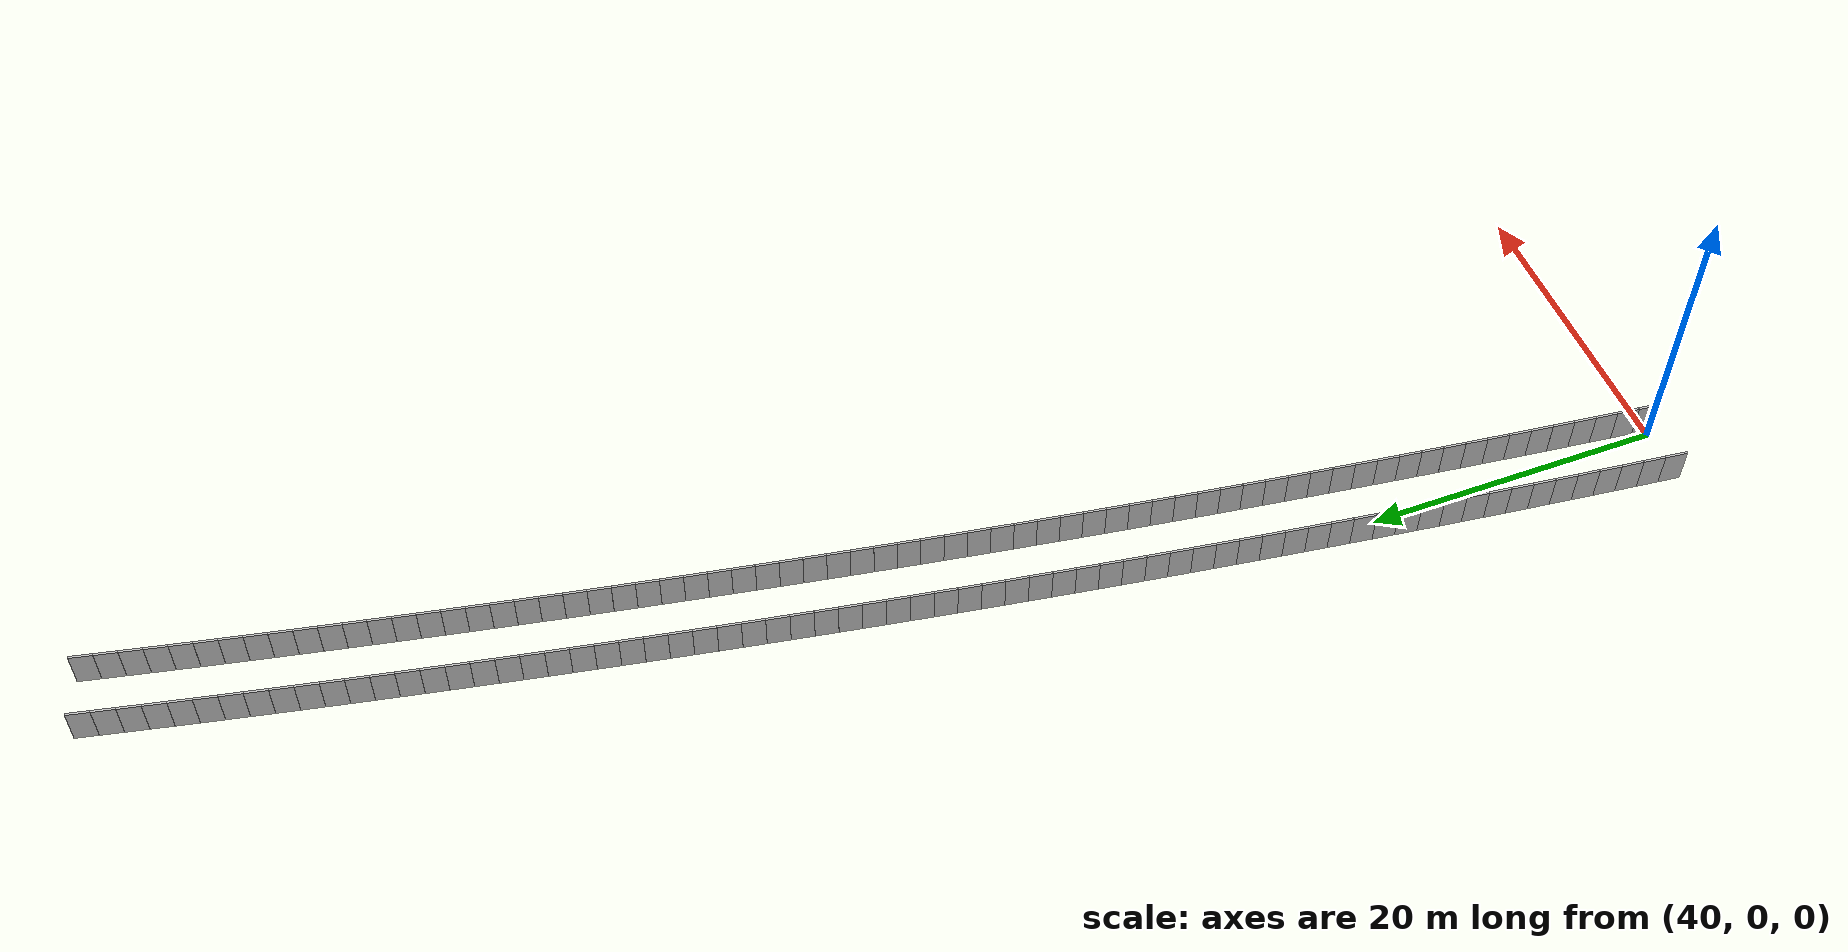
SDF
<sdf version="1.6">
 <model name="sps_0114">
  <static>1</static>
  <allow_auto_disable>0</allow_auto_disable>
  <link name="Wall5109">
   <collision name="collision"><geometry><box><size>1.4965 0.15 2.5</size></box></geometry></collision>
   <visual name="visual">
    <geometry><box><size>1.4965 0.15 2.5</size></box></geometry>
    <transparency>0.0</transparency>
   </visual>
   <pose>57.1898 98.9115 1.25 0 0 -1.79093</pose>
  </link>
  <link name="Wall5110">
   <collision name="collision"><geometry><box><size>1.49658 0.15 2.5</size></box></geometry></collision>
   <visual name="visual">
    <geometry><box><size>1.49658 0.15 2.5</size></box></geometry>
    <transparency>0.0</transparency>
   </visual>
   <pose>56.8642 97.4508 1.25 0 0 -1.78929</pose>
  </link>
  <link name="Wall5111">
   <collision name="collision"><geometry><box><size>1.49648 0.15 2.5</size></box></geometry></collision>
   <visual name="visual">
    <geometry><box><size>1.49648 0.15 2.5</size></box></geometry>
    <transparency>0.0</transparency>
   </visual>
   <pose>56.541 95.9896 1.25 0 0 -1.78768</pose>
  </link>
  <link name="Wall5112">
   <collision name="collision"><geometry><box><size>1.49654 0.15 2.5</size></box></geometry></collision>
   <visual name="visual">
    <geometry><box><size>1.49654 0.15 2.5</size></box></geometry>
    <transparency>0.0</transparency>
   </visual>
   <pose>56.2201 94.5279 1.25 0 0 -1.78613</pose>
  </link>
  <link name="Wall5113">
   <collision name="collision"><geometry><box><size>1.4965 0.15 2.5</size></box></geometry></collision>
   <visual name="visual">
    <geometry><box><size>1.4965 0.15 2.5</size></box></geometry>
    <transparency>0.0</transparency>
   </visual>
   <pose>55.9015 93.0657 1.25 0 0 -1.78467</pose>
  </link>
  <link name="Wall5114">
   <collision name="collision"><geometry><box><size>1.49654 0.15 2.5</size></box></geometry></collision>
   <visual name="visual">
    <geometry><box><size>1.49654 0.15 2.5</size></box></geometry>
    <transparency>0.0</transparency>
   </visual>
   <pose>55.5851 91.603 1.25 0 0 -1.78287</pose>
  </link>
  <link name="Wall5115">
   <collision name="collision"><geometry><box><size>1.49639 0.15 2.5</size></box></geometry></collision>
   <visual name="visual">
    <geometry><box><size>1.49639 0.15 2.5</size></box></geometry>
    <transparency>0.0</transparency>
   </visual>
   <pose>55.2714 90.1398 1.25 0 0 -1.78122</pose>
  </link>
  <link name="Wall5116">
   <collision name="collision"><geometry><box><size>1.49654 0.15 2.5</size></box></geometry></collision>
   <visual name="visual">
    <geometry><box><size>1.49654 0.15 2.5</size></box></geometry>
    <transparency>0.0</transparency>
   </visual>
   <pose>54.9599 88.6761 1.25 0 0 -1.77974</pose>
  </link>
  <link name="Wall5117">
   <collision name="collision"><geometry><box><size>1.49649 0.15 2.5</size></box></geometry></collision>
   <visual name="visual">
    <geometry><box><size>1.49649 0.15 2.5</size></box></geometry>
    <transparency>0.0</transparency>
   </visual>
   <pose>54.6506 87.2119 1.25 0 0 -1.77821</pose>
  </link>
  <link name="Wall5118">
   <collision name="collision"><geometry><box><size>1.49637 0.15 2.5</size></box></geometry></collision>
   <visual name="visual">
    <geometry><box><size>1.49637 0.15 2.5</size></box></geometry>
    <transparency>0.0</transparency>
   </visual>
   <pose>54.3436 85.7473 1.25 0 0 -1.77664</pose>
  </link>
  <link name="Wall5119">
   <collision name="collision"><geometry><box><size>1.49675 0.15 2.5</size></box></geometry></collision>
   <visual name="visual">
    <geometry><box><size>1.49675 0.15 2.5</size></box></geometry>
    <transparency>0.0</transparency>
   </visual>
   <pose>54.0388 84.2821 1.25 0 0 -1.77505</pose>
  </link>
  <link name="Wall5120">
   <collision name="collision"><geometry><box><size>1.49639 0.15 2.5</size></box></geometry></collision>
   <visual name="visual">
    <geometry><box><size>1.49639 0.15 2.5</size></box></geometry>
    <transparency>0.0</transparency>
   </visual>
   <pose>53.7364 82.8164 1.25 0 0 -1.77347</pose>
  </link>
  <link name="Wall5121">
   <collision name="collision"><geometry><box><size>1.49656 0.15 2.5</size></box></geometry></collision>
   <visual name="visual">
    <geometry><box><size>1.49656 0.15 2.5</size></box></geometry>
    <transparency>0.0</transparency>
   </visual>
   <pose>53.4365 81.3503 1.25 0 0 -1.77178</pose>
  </link>
  <link name="Wall5122">
   <collision name="collision"><geometry><box><size>1.49649 0.15 2.5</size></box></geometry></collision>
   <visual name="visual">
    <geometry><box><size>1.49649 0.15 2.5</size></box></geometry>
    <transparency>0.0</transparency>
   </visual>
   <pose>53.1388 79.8837 1.25 0 0 -1.77034</pose>
  </link>
  <link name="Wall5123">
   <collision name="collision"><geometry><box><size>1.49661 0.15 2.5</size></box></geometry></collision>
   <visual name="visual">
    <geometry><box><size>1.49661 0.15 2.5</size></box></geometry>
    <transparency>0.0</transparency>
   </visual>
   <pose>52.8433 78.4166 1.25 0 0 -1.76866</pose>
  </link>
  <link name="Wall5124">
   <collision name="collision"><geometry><box><size>1.4965 0.15 2.5</size></box></geometry></collision>
   <visual name="visual">
    <geometry><box><size>1.4965 0.15 2.5</size></box></geometry>
    <transparency>0.0</transparency>
   </visual>
   <pose>52.5503 76.949 1.25 0 0 -1.76705</pose>
  </link>
  <link name="Wall5125">
   <collision name="collision"><geometry><box><size>1.49649 0.15 2.5</size></box></geometry></collision>
   <visual name="visual">
    <geometry><box><size>1.49649 0.15 2.5</size></box></geometry>
    <transparency>0.0</transparency>
   </visual>
   <pose>52.2596 75.481 1.25 0 0 -1.76555</pose>
  </link>
  <link name="Wall5126">
   <collision name="collision"><geometry><box><size>1.49662 0.15 2.5</size></box></geometry></collision>
   <visual name="visual">
    <geometry><box><size>1.49662 0.15 2.5</size></box></geometry>
    <transparency>0.0</transparency>
   </visual>
   <pose>51.9712 74.0125 1.25 0 0 -1.76387</pose>
  </link>
  <link name="Wall5127">
   <collision name="collision"><geometry><box><size>1.49635 0.15 2.5</size></box></geometry></collision>
   <visual name="visual">
    <geometry><box><size>1.49635 0.15 2.5</size></box></geometry>
    <transparency>0.0</transparency>
   </visual>
   <pose>51.6853 72.5436 1.25 0 0 -1.76229</pose>
  </link>
  <link name="Wall5128">
   <collision name="collision"><geometry><box><size>1.49653 0.15 2.5</size></box></geometry></collision>
   <visual name="visual">
    <geometry><box><size>1.49653 0.15 2.5</size></box></geometry>
    <transparency>0.0</transparency>
   </visual>
   <pose>51.4016 71.0743 1.25 0 0 -1.76077</pose>
  </link>
  <link name="Wall5129">
   <collision name="collision"><geometry><box><size>1.49668 0.15 2.5</size></box></geometry></collision>
   <visual name="visual">
    <geometry><box><size>1.49668 0.15 2.5</size></box></geometry>
    <transparency>0.0</transparency>
   </visual>
   <pose>51.1202 69.6044 1.25 0 0 -1.75913</pose>
  </link>
  <link name="Wall5130">
   <collision name="collision"><geometry><box><size>1.49645 0.15 2.5</size></box></geometry></collision>
   <visual name="visual">
    <geometry><box><size>1.49645 0.15 2.5</size></box></geometry>
    <transparency>0.0</transparency>
   </visual>
   <pose>50.8411 68.1341 1.25 0 0 -1.75767</pose>
  </link>
  <link name="Wall5131">
   <collision name="collision"><geometry><box><size>1.4966 0.15 2.5</size></box></geometry></collision>
   <visual name="visual">
    <geometry><box><size>1.4966 0.15 2.5</size></box></geometry>
    <transparency>0.0</transparency>
   </visual>
   <pose>50.5643 66.6634 1.25 0 0 -1.75599</pose>
  </link>
  <link name="Wall5132">
   <collision name="collision"><geometry><box><size>1.49634 0.15 2.5</size></box></geometry></collision>
   <visual name="visual">
    <geometry><box><size>1.49634 0.15 2.5</size></box></geometry>
    <transparency>0.0</transparency>
   </visual>
   <pose>50.2899 65.1923 1.25 0 0 -1.7544</pose>
  </link>
  <link name="Wall5133">
   <collision name="collision"><geometry><box><size>1.49654 0.15 2.5</size></box></geometry></collision>
   <visual name="visual">
    <geometry><box><size>1.49654 0.15 2.5</size></box></geometry>
    <transparency>0.0</transparency>
   </visual>
   <pose>50.0178 63.7208 1.25 0 0 -1.75288</pose>
  </link>
  <link name="Wall5134">
   <collision name="collision"><geometry><box><size>1.49668 0.15 2.5</size></box></geometry></collision>
   <visual name="visual">
    <geometry><box><size>1.49668 0.15 2.5</size></box></geometry>
    <transparency>0.0</transparency>
   </visual>
   <pose>49.7481 62.2487 1.25 0 0 -1.75112</pose>
  </link>
  <link name="Wall5135">
   <collision name="collision"><geometry><box><size>1.4965 0.15 2.5</size></box></geometry></collision>
   <visual name="visual">
    <geometry><box><size>1.4965 0.15 2.5</size></box></geometry>
    <transparency>0.0</transparency>
   </visual>
   <pose>49.4806 60.7762 1.25 0 0 -1.74978</pose>
  </link>
  <link name="Wall5136">
   <collision name="collision"><geometry><box><size>1.4964 0.15 2.5</size></box></geometry></collision>
   <visual name="visual">
    <geometry><box><size>1.4964 0.15 2.5</size></box></geometry>
    <transparency>0.0</transparency>
   </visual>
   <pose>49.2155 59.3034 1.25 0 0 -1.74801</pose>
  </link>
  <link name="Wall5137">
   <collision name="collision"><geometry><box><size>1.49667 0.15 2.5</size></box></geometry></collision>
   <visual name="visual">
    <geometry><box><size>1.49667 0.15 2.5</size></box></geometry>
    <transparency>0.0</transparency>
   </visual>
   <pose>48.9528 57.8301 1.25 0 0 -1.74648</pose>
  </link>
  <link name="Wall5138">
   <collision name="collision"><geometry><box><size>1.49641 0.15 2.5</size></box></geometry></collision>
   <visual name="visual">
    <geometry><box><size>1.49641 0.15 2.5</size></box></geometry>
    <transparency>0.0</transparency>
   </visual>
   <pose>48.6923 56.3564 1.25 0 0 -1.74502</pose>
  </link>
  <link name="Wall5139">
   <collision name="collision"><geometry><box><size>1.49662 0.15 2.5</size></box></geometry></collision>
   <visual name="visual">
    <geometry><box><size>1.49662 0.15 2.5</size></box></geometry>
    <transparency>0.0</transparency>
   </visual>
   <pose>48.4343 54.8823 1.25 0 0 -1.74322</pose>
  </link>
  <link name="Wall5140">
   <collision name="collision"><geometry><box><size>1.49643 0.15 2.5</size></box></geometry></collision>
   <visual name="visual">
    <geometry><box><size>1.49643 0.15 2.5</size></box></geometry>
    <transparency>0.0</transparency>
   </visual>
   <pose>48.1786 53.4078 1.25 0 0 -1.74179</pose>
  </link>
  <link name="Wall5141">
   <collision name="collision"><geometry><box><size>1.49662 0.15 2.5</size></box></geometry></collision>
   <visual name="visual">
    <geometry><box><size>1.49662 0.15 2.5</size></box></geometry>
    <transparency>0.0</transparency>
   </visual>
   <pose>47.9251 51.9329 1.25 0 0 -1.74012</pose>
  </link>
  <link name="Wall5142">
   <collision name="collision"><geometry><box><size>1.49643 0.15 2.5</size></box></geometry></collision>
   <visual name="visual">
    <geometry><box><size>1.49643 0.15 2.5</size></box></geometry>
    <transparency>0.0</transparency>
   </visual>
   <pose>47.674 50.4576 1.25 0 0 -1.73865</pose>
  </link>
  <link name="Wall5143">
   <collision name="collision"><geometry><box><size>1.49657 0.15 2.5</size></box></geometry></collision>
   <visual name="visual">
    <geometry><box><size>1.49657 0.15 2.5</size></box></geometry>
    <transparency>0.0</transparency>
   </visual>
   <pose>47.4253 48.9819 1.25 0 0 -1.73698</pose>
  </link>
  <link name="Wall5144">
   <collision name="collision"><geometry><box><size>1.49643 0.15 2.5</size></box></geometry></collision>
   <visual name="visual">
    <geometry><box><size>1.49643 0.15 2.5</size></box></geometry>
    <transparency>0.0</transparency>
   </visual>
   <pose>47.1789 47.5058 1.25 0 0 -1.73542</pose>
  </link>
  <link name="Wall5145">
   <collision name="collision"><geometry><box><size>1.49645 0.15 2.5</size></box></geometry></collision>
   <visual name="visual">
    <geometry><box><size>1.49645 0.15 2.5</size></box></geometry>
    <transparency>0.0</transparency>
   </visual>
   <pose>46.9348 46.0294 1.25 0 0 -1.73377</pose>
  </link>
  <link name="Wall5146">
   <collision name="collision"><geometry><box><size>1.49664 0.15 2.5</size></box></geometry></collision>
   <visual name="visual">
    <geometry><box><size>1.49664 0.15 2.5</size></box></geometry>
    <transparency>0.0</transparency>
   </visual>
   <pose>46.6931 44.5525 1.25 0 0 -1.73226</pose>
  </link>
  <link name="Wall5147">
   <collision name="collision"><geometry><box><size>1.49649 0.15 2.5</size></box></geometry></collision>
   <visual name="visual">
    <geometry><box><size>1.49649 0.15 2.5</size></box></geometry>
    <transparency>0.0</transparency>
   </visual>
   <pose>46.4538 43.0752 1.25 0 0 -1.73062</pose>
  </link>
  <link name="Wall5148">
   <collision name="collision"><geometry><box><size>1.49651 0.15 2.5</size></box></geometry></collision>
   <visual name="visual">
    <geometry><box><size>1.49651 0.15 2.5</size></box></geometry>
    <transparency>0.0</transparency>
   </visual>
   <pose>46.2167 41.5976 1.25 0 0 -1.72917</pose>
  </link>
  <link name="Wall5149">
   <collision name="collision"><geometry><box><size>1.49652 0.15 2.5</size></box></geometry></collision>
   <visual name="visual">
    <geometry><box><size>1.49652 0.15 2.5</size></box></geometry>
    <transparency>0.0</transparency>
   </visual>
   <pose>45.982 40.1196 1.25 0 0 -1.7274</pose>
  </link>
  <link name="Wall5150">
   <collision name="collision"><geometry><box><size>1.4966 0.15 2.5</size></box></geometry></collision>
   <visual name="visual">
    <geometry><box><size>1.4966 0.15 2.5</size></box></geometry>
    <transparency>0.0</transparency>
   </visual>
   <pose>45.7497 38.6412 1.25 0 0 -1.7259</pose>
  </link>
  <link name="Wall5151">
   <collision name="collision"><geometry><box><size>1.49639 0.15 2.5</size></box></geometry></collision>
   <visual name="visual">
    <geometry><box><size>1.49639 0.15 2.5</size></box></geometry>
    <transparency>0.0</transparency>
   </visual>
   <pose>45.5196 37.1625 1.25 0 0 -1.72444</pose>
  </link>
  <link name="Wall5152">
   <collision name="collision"><geometry><box><size>1.49665 0.15 2.5</size></box></geometry></collision>
   <visual name="visual">
    <geometry><box><size>1.49665 0.15 2.5</size></box></geometry>
    <transparency>0.0</transparency>
   </visual>
   <pose>45.2919 35.6834 1.25 0 0 -1.72264</pose>
  </link>
  <link name="Wall5153">
   <collision name="collision"><geometry><box><size>1.49651 0.15 2.5</size></box></geometry></collision>
   <visual name="visual">
    <geometry><box><size>1.49651 0.15 2.5</size></box></geometry>
    <transparency>0.0</transparency>
   </visual>
   <pose>45.0666 34.2039 1.25 0 0 -1.72121</pose>
  </link>
  <link name="Wall5154">
   <collision name="collision"><geometry><box><size>1.49651 0.15 2.5</size></box></geometry></collision>
   <visual name="visual">
    <geometry><box><size>1.49651 0.15 2.5</size></box></geometry>
    <transparency>0.0</transparency>
   </visual>
   <pose>44.8435 32.7241 1.25 0 0 -1.71956</pose>
  </link>
  <link name="Wall5155">
   <collision name="collision"><geometry><box><size>1.49657 0.15 2.5</size></box></geometry></collision>
   <visual name="visual">
    <geometry><box><size>1.49657 0.15 2.5</size></box></geometry>
    <transparency>0.0</transparency>
   </visual>
   <pose>44.6229 31.2439 1.25 0 0 -1.7179</pose>
  </link>
  <link name="Wall5156">
   <collision name="collision"><geometry><box><size>1.49644 0.15 2.5</size></box></geometry></collision>
   <visual name="visual">
    <geometry><box><size>1.49644 0.15 2.5</size></box></geometry>
    <transparency>0.0</transparency>
   </visual>
   <pose>44.4047 29.7634 1.25 0 0 -1.71647</pose>
  </link>
  <link name="Wall5157">
   <collision name="collision"><geometry><box><size>1.49649 0.15 2.5</size></box></geometry></collision>
   <visual name="visual">
    <geometry><box><size>1.49649 0.15 2.5</size></box></geometry>
    <transparency>0.0</transparency>
   </visual>
   <pose>44.1887 28.2826 1.25 0 0 -1.71469</pose>
  </link>
  <link name="Wall5158">
   <collision name="collision"><geometry><box><size>1.49656 0.15 2.5</size></box></geometry></collision>
   <visual name="visual">
    <geometry><box><size>1.49656 0.15 2.5</size></box></geometry>
    <transparency>0.0</transparency>
   </visual>
   <pose>43.9752 26.8014 1.25 0 0 -1.71333</pose>
  </link>
  <link name="Wall5159">
   <collision name="collision"><geometry><box><size>1.49662 0.15 2.5</size></box></geometry></collision>
   <visual name="visual">
    <geometry><box><size>1.49662 0.15 2.5</size></box></geometry>
    <transparency>0.0</transparency>
   </visual>
   <pose>43.7638 25.3198 1.25 0 0 -1.71159</pose>
  </link>
  <link name="Wall5160">
   <collision name="collision"><geometry><box><size>1.49649 0.15 2.5</size></box></geometry></collision>
   <visual name="visual">
    <geometry><box><size>1.49649 0.15 2.5</size></box></geometry>
    <transparency>0.0</transparency>
   </visual>
   <pose>43.555 23.8379 1.25 0 0 -1.71008</pose>
  </link>
  <link name="Wall5161">
   <collision name="collision"><geometry><box><size>1.49631 0.15 2.5</size></box></geometry></collision>
   <visual name="visual">
    <geometry><box><size>1.49631 0.15 2.5</size></box></geometry>
    <transparency>0.0</transparency>
   </visual>
   <pose>43.3485 22.3558 1.25 0 0 -1.70837</pose>
  </link>
  <link name="Wall5162">
   <collision name="collision"><geometry><box><size>1.49686 0.15 2.5</size></box></geometry></collision>
   <visual name="visual">
    <geometry><box><size>1.49686 0.15 2.5</size></box></geometry>
    <transparency>0.0</transparency>
   </visual>
   <pose>43.1444 20.8732 1.25 0 0 -1.70683</pose>
  </link>
  <link name="Wall5163">
   <collision name="collision"><geometry><box><size>1.4965 0.15 2.5</size></box></geometry></collision>
   <visual name="visual">
    <geometry><box><size>1.4965 0.15 2.5</size></box></geometry>
    <transparency>0.0</transparency>
   </visual>
   <pose>42.9425 19.3902 1.25 0 0 -1.70539</pose>
  </link>
  <link name="Wall5164">
   <collision name="collision"><geometry><box><size>1.49643 0.15 2.5</size></box></geometry></collision>
   <visual name="visual">
    <geometry><box><size>1.49643 0.15 2.5</size></box></geometry>
    <transparency>0.0</transparency>
   </visual>
   <pose>42.7429 17.9071 1.25 0 0 -1.70379</pose>
  </link>
  <link name="Wall5165">
   <collision name="collision"><geometry><box><size>1.49663 0.15 2.5</size></box></geometry></collision>
   <visual name="visual">
    <geometry><box><size>1.49663 0.15 2.5</size></box></geometry>
    <transparency>0.0</transparency>
   </visual>
   <pose>42.5457 16.4236 1.25 0 0 -1.702</pose>
  </link>
  <link name="Wall5166">
   <collision name="collision"><geometry><box><size>1.49661 0.15 2.5</size></box></geometry></collision>
   <visual name="visual">
    <geometry><box><size>1.49661 0.15 2.5</size></box></geometry>
    <transparency>0.0</transparency>
   </visual>
   <pose>42.3509 14.9397 1.25 0 0 -1.70064</pose>
  </link>
  <link name="Wall5167">
   <collision name="collision"><geometry><box><size>1.49646 0.15 2.5</size></box></geometry></collision>
   <visual name="visual">
    <geometry><box><size>1.49646 0.15 2.5</size></box></geometry>
    <transparency>0.0</transparency>
   </visual>
   <pose>42.1584 13.4556 1.25 0 0 -1.69893</pose>
  </link>
  <link name="Wall5168">
   <collision name="collision"><geometry><box><size>1.49642 0.15 2.5</size></box></geometry></collision>
   <visual name="visual">
    <geometry><box><size>1.49642 0.15 2.5</size></box></geometry>
    <transparency>0.0</transparency>
   </visual>
   <pose>41.9683 11.9713 1.25 0 0 -1.69741</pose>
  </link>
  <link name="Wall5169">
   <collision name="collision"><geometry><box><size>1.49648 0.15 2.5</size></box></geometry></collision>
   <visual name="visual">
    <geometry><box><size>1.49648 0.15 2.5</size></box></geometry>
    <transparency>0.0</transparency>
   </visual>
   <pose>41.7806 10.4867 1.25 0 0 -1.6958</pose>
  </link>
  <link name="Wall5170">
   <collision name="collision"><geometry><box><size>1.49655 0.15 2.5</size></box></geometry></collision>
   <visual name="visual">
    <geometry><box><size>1.49655 0.15 2.5</size></box></geometry>
    <transparency>0.0</transparency>
   </visual>
   <pose>41.5952 9.00169 1.25 0 0 -1.6942</pose>
  </link>
  <link name="Wall5171">
   <collision name="collision"><geometry><box><size>1.4965 0.15 2.5</size></box></geometry></collision>
   <visual name="visual">
    <geometry><box><size>1.4965 0.15 2.5</size></box></geometry>
    <transparency>0.0</transparency>
   </visual>
   <pose>41.4122 7.5164 1.25 0 0 -1.6926</pose>
  </link>
  <link name="Wall5172">
   <collision name="collision"><geometry><box><size>1.49659 0.15 2.5</size></box></geometry></collision>
   <visual name="visual">
    <geometry><box><size>1.49659 0.15 2.5</size></box></geometry>
    <transparency>0.0</transparency>
   </visual>
   <pose>41.2315 6.03081 1.25 0 0 -1.69107</pose>
  </link>
  <link name="Wall5173">
   <collision name="collision"><geometry><box><size>1.49653 0.15 2.5</size></box></geometry></collision>
   <visual name="visual">
    <geometry><box><size>1.49653 0.15 2.5</size></box></geometry>
    <transparency>0.0</transparency>
   </visual>
   <pose>41.0532 4.54491 1.25 0 0 -1.68935</pose>
  </link>
  <link name="Wall5174">
   <collision name="collision"><geometry><box><size>1.49645 0.15 2.5</size></box></geometry></collision>
   <visual name="visual">
    <geometry><box><size>1.49645 0.15 2.5</size></box></geometry>
    <transparency>0.0</transparency>
   </visual>
   <pose>40.8773 3.05879 1.25 0 0 -1.68788</pose>
  </link>
  <link name="Wall5175">
   <collision name="collision"><geometry><box><size>1.49656 0.15 2.5</size></box></geometry></collision>
   <visual name="visual">
    <geometry><box><size>1.49656 0.15 2.5</size></box></geometry>
    <transparency>0.0</transparency>
   </visual>
   <pose>40.7036 1.5724 1.25 0 0 -1.68639</pose>
  </link>
  <link name="Wall5176">
   <collision name="collision"><geometry><box><size>1.49651 0.15 2.5</size></box></geometry></collision>
   <visual name="visual">
    <geometry><box><size>1.49651 0.15 2.5</size></box></geometry>
    <transparency>0.0</transparency>
   </visual>
   <pose>40.5322 0.0857076 1.25 0 0 -1.68467</pose>
  </link>
  <link name="Wall6905">
   <collision name="collision"><geometry><box><size>1.50284 0.15 2.5</size></box></geometry></collision>
   <visual name="visual">
    <geometry><box><size>1.50284 0.15 2.5</size></box></geometry>
    <transparency>0.0</transparency>
   </visual>
   <pose>53.1502 99.8152 1.25 0 0 -1.79082</pose>
  </link>
  <link name="Wall6906">
   <collision name="collision"><geometry><box><size>1.50307 0.15 2.5</size></box></geometry></collision>
   <visual name="visual">
    <geometry><box><size>1.50307 0.15 2.5</size></box></geometry>
    <transparency>0.0</transparency>
   </visual>
   <pose>52.8234 98.3482 1.25 0 0 -1.78925</pose>
  </link>
  <link name="Wall6907">
   <collision name="collision"><geometry><box><size>1.50304 0.15 2.5</size></box></geometry></collision>
   <visual name="visual">
    <geometry><box><size>1.50304 0.15 2.5</size></box></geometry>
    <transparency>0.0</transparency>
   </visual>
   <pose>52.4988 96.8806 1.25 0 0 -1.78767</pose>
  </link>
  <link name="Wall6908">
   <collision name="collision"><geometry><box><size>1.50311 0.15 2.5</size></box></geometry></collision>
   <visual name="visual">
    <geometry><box><size>1.50311 0.15 2.5</size></box></geometry>
    <transparency>0.0</transparency>
   </visual>
   <pose>52.1764 95.4125 1.25 0 0 -1.78617</pose>
  </link>
  <link name="Wall6909">
   <collision name="collision"><geometry><box><size>1.50319 0.15 2.5</size></box></geometry></collision>
   <visual name="visual">
    <geometry><box><size>1.50319 0.15 2.5</size></box></geometry>
    <transparency>0.0</transparency>
   </visual>
   <pose>51.8564 93.9438 1.25 0 0 -1.78449</pose>
  </link>
  <link name="Wall6910">
   <collision name="collision"><geometry><box><size>1.5031 0.15 2.5</size></box></geometry></collision>
   <visual name="visual">
    <geometry><box><size>1.5031 0.15 2.5</size></box></geometry>
    <transparency>0.0</transparency>
   </visual>
   <pose>51.5388 92.4746 1.25 0 0 -1.78289</pose>
  </link>
  <link name="Wall6911">
   <collision name="collision"><geometry><box><size>1.503 0.15 2.5</size></box></geometry></collision>
   <visual name="visual">
    <geometry><box><size>1.503 0.15 2.5</size></box></geometry>
    <transparency>0.0</transparency>
   </visual>
   <pose>51.2235 91.005 1.25 0 0 -1.7814</pose>
  </link>
  <link name="Wall6912">
   <collision name="collision"><geometry><box><size>1.50309 0.15 2.5</size></box></geometry></collision>
   <visual name="visual">
    <geometry><box><size>1.50309 0.15 2.5</size></box></geometry>
    <transparency>0.0</transparency>
   </visual>
   <pose>50.9105 89.5349 1.25 0 0 -1.77973</pose>
  </link>
  <link name="Wall6913">
   <collision name="collision"><geometry><box><size>1.50306 0.15 2.5</size></box></geometry></collision>
   <visual name="visual">
    <geometry><box><size>1.50306 0.15 2.5</size></box></geometry>
    <transparency>0.0</transparency>
   </visual>
   <pose>50.5998 88.0643 1.25 0 0 -1.77828</pose>
  </link>
  <link name="Wall6914">
   <collision name="collision"><geometry><box><size>1.5031 0.15 2.5</size></box></geometry></collision>
   <visual name="visual">
    <geometry><box><size>1.5031 0.15 2.5</size></box></geometry>
    <transparency>0.0</transparency>
   </visual>
   <pose>50.2914 86.5932 1.25 0 0 -1.77662</pose>
  </link>
  <link name="Wall6915">
   <collision name="collision"><geometry><box><size>1.50303 0.15 2.5</size></box></geometry></collision>
   <visual name="visual">
    <geometry><box><size>1.50303 0.15 2.5</size></box></geometry>
    <transparency>0.0</transparency>
   </visual>
   <pose>49.9854 85.1216 1.25 0 0 -1.77501</pose>
  </link>
  <link name="Wall6916">
   <collision name="collision"><geometry><box><size>1.50314 0.15 2.5</size></box></geometry></collision>
   <visual name="visual">
    <geometry><box><size>1.50314 0.15 2.5</size></box></geometry>
    <transparency>0.0</transparency>
   </visual>
   <pose>49.6818 83.6495 1.25 0 0 -1.77334</pose>
  </link>
  <link name="Wall6917">
   <collision name="collision"><geometry><box><size>1.50307 0.15 2.5</size></box></geometry></collision>
   <visual name="visual">
    <geometry><box><size>1.50307 0.15 2.5</size></box></geometry>
    <transparency>0.0</transparency>
   </visual>
   <pose>49.3805 82.1769 1.25 0 0 -1.7719</pose>
  </link>
  <link name="Wall6918">
   <collision name="collision"><geometry><box><size>1.50318 0.15 2.5</size></box></geometry></collision>
   <visual name="visual">
    <geometry><box><size>1.50318 0.15 2.5</size></box></geometry>
    <transparency>0.0</transparency>
   </visual>
   <pose>49.0815 80.7038 1.25 0 0 -1.77022</pose>
  </link>
  <link name="Wall6919">
   <collision name="collision"><geometry><box><size>1.50295 0.15 2.5</size></box></geometry></collision>
   <visual name="visual">
    <geometry><box><size>1.50295 0.15 2.5</size></box></geometry>
    <transparency>0.0</transparency>
   </visual>
   <pose>48.7849 79.2303 1.25 0 0 -1.76864</pose>
  </link>
  <link name="Wall6920">
   <collision name="collision"><geometry><box><size>1.50305 0.15 2.5</size></box></geometry></collision>
   <visual name="visual">
    <geometry><box><size>1.50305 0.15 2.5</size></box></geometry>
    <transparency>0.0</transparency>
   </visual>
   <pose>48.4907 77.7564 1.25 0 0 -1.76709</pose>
  </link>
  <link name="Wall6921">
   <collision name="collision"><geometry><box><size>1.50302 0.15 2.5</size></box></geometry></collision>
   <visual name="visual">
    <geometry><box><size>1.50302 0.15 2.5</size></box></geometry>
    <transparency>0.0</transparency>
   </visual>
   <pose>48.1987 76.282 1.25 0 0 -1.76552</pose>
  </link>
  <link name="Wall6922">
   <collision name="collision"><geometry><box><size>1.50318 0.15 2.5</size></box></geometry></collision>
   <visual name="visual">
    <geometry><box><size>1.50318 0.15 2.5</size></box></geometry>
    <transparency>0.0</transparency>
   </visual>
   <pose>47.909 74.8071 1.25 0 0 -1.76397</pose>
  </link>
  <link name="Wall6923">
   <collision name="collision"><geometry><box><size>1.50308 0.15 2.5</size></box></geometry></collision>
   <visual name="visual">
    <geometry><box><size>1.50308 0.15 2.5</size></box></geometry>
    <transparency>0.0</transparency>
   </visual>
   <pose>47.6216 73.3317 1.25 0 0 -1.76237</pose>
  </link>
  <link name="Wall6924">
   <collision name="collision"><geometry><box><size>1.50305 0.15 2.5</size></box></geometry></collision>
   <visual name="visual">
    <geometry><box><size>1.50305 0.15 2.5</size></box></geometry>
    <transparency>0.0</transparency>
   </visual>
   <pose>47.3366 71.8559 1.25 0 0 -1.76076</pose>
  </link>
  <link name="Wall6925">
   <collision name="collision"><geometry><box><size>1.50314 0.15 2.5</size></box></geometry></collision>
   <visual name="visual">
    <geometry><box><size>1.50314 0.15 2.5</size></box></geometry>
    <transparency>0.0</transparency>
   </visual>
   <pose>47.0539 70.3796 1.25 0 0 -1.75914</pose>
  </link>
  <link name="Wall6926">
   <collision name="collision"><geometry><box><size>1.50296 0.15 2.5</size></box></geometry></collision>
   <visual name="visual">
    <geometry><box><size>1.50296 0.15 2.5</size></box></geometry>
    <transparency>0.0</transparency>
   </visual>
   <pose>46.7736 68.9029 1.25 0 0 -1.75763</pose>
  </link>
  <link name="Wall6927">
   <collision name="collision"><geometry><box><size>1.50312 0.15 2.5</size></box></geometry></collision>
   <visual name="visual">
    <geometry><box><size>1.50312 0.15 2.5</size></box></geometry>
    <transparency>0.0</transparency>
   </visual>
   <pose>46.4957 67.4258 1.25 0 0 -1.756</pose>
  </link>
  <link name="Wall6928">
   <collision name="collision"><geometry><box><size>1.50305 0.15 2.5</size></box></geometry></collision>
   <visual name="visual">
    <geometry><box><size>1.50305 0.15 2.5</size></box></geometry>
    <transparency>0.0</transparency>
   </visual>
   <pose>46.2201 65.9482 1.25 0 0 -1.7544</pose>
  </link>
  <link name="Wall6929">
   <collision name="collision"><geometry><box><size>1.50307 0.15 2.5</size></box></geometry></collision>
   <visual name="visual">
    <geometry><box><size>1.50307 0.15 2.5</size></box></geometry>
    <transparency>0.0</transparency>
   </visual>
   <pose>45.9467 64.4702 1.25 0 0 -1.75291</pose>
  </link>
  <link name="Wall6930">
   <collision name="collision"><geometry><box><size>1.50319 0.15 2.5</size></box></geometry></collision>
   <visual name="visual">
    <geometry><box><size>1.50319 0.15 2.5</size></box></geometry>
    <transparency>0.0</transparency>
   </visual>
   <pose>45.6758 62.9917 1.25 0 0 -1.75112</pose>
  </link>
  <link name="Wall6931">
   <collision name="collision"><geometry><box><size>1.50301 0.15 2.5</size></box></geometry></collision>
   <visual name="visual">
    <geometry><box><size>1.50301 0.15 2.5</size></box></geometry>
    <transparency>0.0</transparency>
   </visual>
   <pose>45.4072 61.5128 1.25 0 0 -1.74978</pose>
  </link>
  <link name="Wall6932">
   <collision name="collision"><geometry><box><size>1.5031 0.15 2.5</size></box></geometry></collision>
   <visual name="visual">
    <geometry><box><size>1.5031 0.15 2.5</size></box></geometry>
    <transparency>0.0</transparency>
   </visual>
   <pose>45.141 60.0335 1.25 0 0 -1.74803</pose>
  </link>
  <link name="Wall6933">
   <collision name="collision"><geometry><box><size>1.5032 0.15 2.5</size></box></geometry></collision>
   <visual name="visual">
    <geometry><box><size>1.5032 0.15 2.5</size></box></geometry>
    <transparency>0.0</transparency>
   </visual>
   <pose>44.877 58.5537 1.25 0 0 -1.74654</pose>
  </link>
  <link name="Wall6934">
   <collision name="collision"><geometry><box><size>1.5031 0.15 2.5</size></box></geometry></collision>
   <visual name="visual">
    <geometry><box><size>1.5031 0.15 2.5</size></box></geometry>
    <transparency>0.0</transparency>
   </visual>
   <pose>44.6155 57.0735 1.25 0 0 -1.74478</pose>
  </link>
  <link name="Wall6935">
   <collision name="collision"><geometry><box><size>1.50308 0.15 2.5</size></box></geometry></collision>
   <visual name="visual">
    <geometry><box><size>1.50308 0.15 2.5</size></box></geometry>
    <transparency>0.0</transparency>
   </visual>
   <pose>44.3564 55.5929 1.25 0 0 -1.7433</pose>
  </link>
  <link name="Wall6936">
   <collision name="collision"><geometry><box><size>1.50313 0.15 2.5</size></box></geometry></collision>
   <visual name="visual">
    <geometry><box><size>1.50313 0.15 2.5</size></box></geometry>
    <transparency>0.0</transparency>
   </visual>
   <pose>44.0995 54.1119 1.25 0 0 -1.74181</pose>
  </link>
  <link name="Wall6937">
   <collision name="collision"><geometry><box><size>1.50313 0.15 2.5</size></box></geometry></collision>
   <visual name="visual">
    <geometry><box><size>1.50313 0.15 2.5</size></box></geometry>
    <transparency>0.0</transparency>
   </visual>
   <pose>43.845 52.6305 1.25 0 0 -1.74016</pose>
  </link>
  <link name="Wall6938">
   <collision name="collision"><geometry><box><size>1.50287 0.15 2.5</size></box></geometry></collision>
   <visual name="visual">
    <geometry><box><size>1.50287 0.15 2.5</size></box></geometry>
    <transparency>0.0</transparency>
   </visual>
   <pose>43.5928 51.1488 1.25 0 0 -1.73862</pose>
  </link>
  <link name="Wall6939">
   <collision name="collision"><geometry><box><size>1.50315 0.15 2.5</size></box></geometry></collision>
   <visual name="visual">
    <geometry><box><size>1.50315 0.15 2.5</size></box></geometry>
    <transparency>0.0</transparency>
   </visual>
   <pose>43.3429 49.6667 1.25 0 0 -1.73707</pose>
  </link>
  <link name="Wall6940">
   <collision name="collision"><geometry><box><size>1.50291 0.15 2.5</size></box></geometry></collision>
   <visual name="visual">
    <geometry><box><size>1.50291 0.15 2.5</size></box></geometry>
    <transparency>0.0</transparency>
   </visual>
   <pose>43.0954 48.1842 1.25 0 0 -1.73536</pose>
  </link>
  <link name="Wall6941">
   <collision name="collision"><geometry><box><size>1.50315 0.15 2.5</size></box></geometry></collision>
   <visual name="visual">
    <geometry><box><size>1.50315 0.15 2.5</size></box></geometry>
    <transparency>0.0</transparency>
   </visual>
   <pose>42.8502 46.7013 1.25 0 0 -1.73386</pose>
  </link>
  <link name="Wall6942">
   <collision name="collision"><geometry><box><size>1.50312 0.15 2.5</size></box></geometry></collision>
   <visual name="visual">
    <geometry><box><size>1.50312 0.15 2.5</size></box></geometry>
    <transparency>0.0</transparency>
   </visual>
   <pose>42.6074 45.2179 1.25 0 0 -1.73221</pose>
  </link>
  <link name="Wall6943">
   <collision name="collision"><geometry><box><size>1.50316 0.15 2.5</size></box></geometry></collision>
   <visual name="visual">
    <geometry><box><size>1.50316 0.15 2.5</size></box></geometry>
    <transparency>0.0</transparency>
   </visual>
   <pose>42.3671 43.7341 1.25 0 0 -1.7306</pose>
  </link>
  <link name="Wall6944">
   <collision name="collision"><geometry><box><size>1.50297 0.15 2.5</size></box></geometry></collision>
   <visual name="visual">
    <geometry><box><size>1.50297 0.15 2.5</size></box></geometry>
    <transparency>0.0</transparency>
   </visual>
   <pose>42.1291 42.25 1.25 0 0 -1.72902</pose>
  </link>
  <link name="Wall6945">
   <collision name="collision"><geometry><box><size>1.50321 0.15 2.5</size></box></geometry></collision>
   <visual name="visual">
    <geometry><box><size>1.50321 0.15 2.5</size></box></geometry>
    <transparency>0.0</transparency>
   </visual>
   <pose>41.8934 40.7655 1.25 0 0 -1.72747</pose>
  </link>
  <link name="Wall6946">
   <collision name="collision"><geometry><box><size>1.50304 0.15 2.5</size></box></geometry></collision>
   <visual name="visual">
    <geometry><box><size>1.50304 0.15 2.5</size></box></geometry>
    <transparency>0.0</transparency>
   </visual>
   <pose>41.66 39.2806 1.25 0 0 -1.72593</pose>
  </link>
  <link name="Wall6947">
   <collision name="collision"><geometry><box><size>1.50308 0.15 2.5</size></box></geometry></collision>
   <visual name="visual">
    <geometry><box><size>1.50308 0.15 2.5</size></box></geometry>
    <transparency>0.0</transparency>
   </visual>
   <pose>41.4289 37.7954 1.25 0 0 -1.72428</pose>
  </link>
  <link name="Wall6948">
   <collision name="collision"><geometry><box><size>1.50293 0.15 2.5</size></box></geometry></collision>
   <visual name="visual">
    <geometry><box><size>1.50293 0.15 2.5</size></box></geometry>
    <transparency>0.0</transparency>
   </visual>
   <pose>41.2002 36.3099 1.25 0 0 -1.72282</pose>
  </link>
  <link name="Wall6949">
   <collision name="collision"><geometry><box><size>1.50314 0.15 2.5</size></box></geometry></collision>
   <visual name="visual">
    <geometry><box><size>1.50314 0.15 2.5</size></box></geometry>
    <transparency>0.0</transparency>
   </visual>
   <pose>40.974 34.824 1.25 0 0 -1.72103</pose>
  </link>
  <link name="Wall6950">
   <collision name="collision"><geometry><box><size>1.503 0.15 2.5</size></box></geometry></collision>
   <visual name="visual">
    <geometry><box><size>1.503 0.15 2.5</size></box></geometry>
    <transparency>0.0</transparency>
   </visual>
   <pose>40.7501 33.3377 1.25 0 0 -1.71961</pose>
  </link>
  <link name="Wall6951">
   <collision name="collision"><geometry><box><size>1.50306 0.15 2.5</size></box></geometry></collision>
   <visual name="visual">
    <geometry><box><size>1.50306 0.15 2.5</size></box></geometry>
    <transparency>0.0</transparency>
   </visual>
   <pose>40.5284 31.8511 1.25 0 0 -1.71796</pose>
  </link>
  <link name="Wall6952">
   <collision name="collision"><geometry><box><size>1.50307 0.15 2.5</size></box></geometry></collision>
   <visual name="visual">
    <geometry><box><size>1.50307 0.15 2.5</size></box></geometry>
    <transparency>0.0</transparency>
   </visual>
   <pose>40.3093 30.3641 1.25 0 0 -1.71632</pose>
  </link>
  <link name="Wall6953">
   <collision name="collision"><geometry><box><size>1.50318 0.15 2.5</size></box></geometry></collision>
   <visual name="visual">
    <geometry><box><size>1.50318 0.15 2.5</size></box></geometry>
    <transparency>0.0</transparency>
   </visual>
   <pose>40.0924 28.8767 1.25 0 0 -1.71487</pose>
  </link>
  <link name="Wall6954">
   <collision name="collision"><geometry><box><size>1.50302 0.15 2.5</size></box></geometry></collision>
   <visual name="visual">
    <geometry><box><size>1.50302 0.15 2.5</size></box></geometry>
    <transparency>0.0</transparency>
   </visual>
   <pose>39.8778 27.389 1.25 0 0 -1.71324</pose>
  </link>
  <link name="Wall6955">
   <collision name="collision"><geometry><box><size>1.5031 0.15 2.5</size></box></geometry></collision>
   <visual name="visual">
    <geometry><box><size>1.5031 0.15 2.5</size></box></geometry>
    <transparency>0.0</transparency>
   </visual>
   <pose>39.6656 25.901 1.25 0 0 -1.71164</pose>
  </link>
  <link name="Wall6956">
   <collision name="collision"><geometry><box><size>1.50313 0.15 2.5</size></box></geometry></collision>
   <visual name="visual">
    <geometry><box><size>1.50313 0.15 2.5</size></box></geometry>
    <transparency>0.0</transparency>
   </visual>
   <pose>39.4558 24.4126 1.25 0 0 -1.71003</pose>
  </link>
  <link name="Wall6957">
   <collision name="collision"><geometry><box><size>1.50322 0.15 2.5</size></box></geometry></collision>
   <visual name="visual">
    <geometry><box><size>1.50322 0.15 2.5</size></box></geometry>
    <transparency>0.0</transparency>
   </visual>
   <pose>39.2484 22.9238 1.25 0 0 -1.70839</pose>
  </link>
  <link name="Wall6958">
   <collision name="collision"><geometry><box><size>1.50311 0.15 2.5</size></box></geometry></collision>
   <visual name="visual">
    <geometry><box><size>1.50311 0.15 2.5</size></box></geometry>
    <transparency>0.0</transparency>
   </visual>
   <pose>39.0433 21.4347 1.25 0 0 -1.70696</pose>
  </link>
  <link name="Wall6959">
   <collision name="collision"><geometry><box><size>1.50312 0.15 2.5</size></box></geometry></collision>
   <visual name="visual">
    <geometry><box><size>1.50312 0.15 2.5</size></box></geometry>
    <transparency>0.0</transparency>
   </visual>
   <pose>38.8405 19.9453 1.25 0 0 -1.7052</pose>
  </link>
  <link name="Wall6960">
   <collision name="collision"><geometry><box><size>1.50291 0.15 2.5</size></box></geometry></collision>
   <visual name="visual">
    <geometry><box><size>1.50291 0.15 2.5</size></box></geometry>
    <transparency>0.0</transparency>
   </visual>
   <pose>38.6401 18.4557 1.25 0 0 -1.70387</pose>
  </link>
  <link name="Wall6961">
   <collision name="collision"><geometry><box><size>1.50311 0.15 2.5</size></box></geometry></collision>
   <visual name="visual">
    <geometry><box><size>1.50311 0.15 2.5</size></box></geometry>
    <transparency>0.0</transparency>
   </visual>
   <pose>38.442 16.9658 1.25 0 0 -1.70209</pose>
  </link>
  <link name="Wall6962">
   <collision name="collision"><geometry><box><size>1.50322 0.15 2.5</size></box></geometry></collision>
   <visual name="visual">
    <geometry><box><size>1.50322 0.15 2.5</size></box></geometry>
    <transparency>0.0</transparency>
   </visual>
   <pose>38.2465 15.4754 1.25 0 0 -1.70048</pose>
  </link>
  <link name="Wall6963">
   <collision name="collision"><geometry><box><size>1.50316 0.15 2.5</size></box></geometry></collision>
   <visual name="visual">
    <geometry><box><size>1.50316 0.15 2.5</size></box></geometry>
    <transparency>0.0</transparency>
   </visual>
   <pose>38.0532 13.9847 1.25 0 0 -1.69889</pose>
  </link>
  <link name="Wall6964">
   <collision name="collision"><geometry><box><size>1.50299 0.15 2.5</size></box></geometry></collision>
   <visual name="visual">
    <geometry><box><size>1.50299 0.15 2.5</size></box></geometry>
    <transparency>0.0</transparency>
   </visual>
   <pose>37.8624 12.4938 1.25 0 0 -1.69739</pose>
  </link>
  <link name="Wall6965">
   <collision name="collision"><geometry><box><size>1.50313 0.15 2.5</size></box></geometry></collision>
   <visual name="visual">
    <geometry><box><size>1.50313 0.15 2.5</size></box></geometry>
    <transparency>0.0</transparency>
   </visual>
   <pose>37.6738 11.0026 1.25 0 0 -1.69582</pose>
  </link>
  <link name="Wall6966">
   <collision name="collision"><geometry><box><size>1.50309 0.15 2.5</size></box></geometry></collision>
   <visual name="visual">
    <geometry><box><size>1.50309 0.15 2.5</size></box></geometry>
    <transparency>0.0</transparency>
   </visual>
   <pose>37.4874 9.51109 1.25 0 0 -1.69431</pose>
  </link>
  <link name="Wall6967">
   <collision name="collision"><geometry><box><size>1.50314 0.15 2.5</size></box></geometry></collision>
   <visual name="visual">
    <geometry><box><size>1.50314 0.15 2.5</size></box></geometry>
    <transparency>0.0</transparency>
   </visual>
   <pose>37.3036 8.01927 1.25 0 0 -1.69259</pose>
  </link>
  <link name="Wall6968">
   <collision name="collision"><geometry><box><size>1.50305 0.15 2.5</size></box></geometry></collision>
   <visual name="visual">
    <geometry><box><size>1.50305 0.15 2.5</size></box></geometry>
    <transparency>0.0</transparency>
   </visual>
   <pose>37.1221 6.52717 1.25 0 0 -1.69108</pose>
  </link>
  <link name="Wall6969">
   <collision name="collision"><geometry><box><size>1.50293 0.15 2.5</size></box></geometry></collision>
   <visual name="visual">
    <geometry><box><size>1.50293 0.15 2.5</size></box></geometry>
    <transparency>0.0</transparency>
   </visual>
   <pose>36.943 5.0349 1.25 0 0 -1.68941</pose>
  </link>
  <link name="Wall6970">
   <collision name="collision"><geometry><box><size>1.50309 0.15 2.5</size></box></geometry></collision>
   <visual name="visual">
    <geometry><box><size>1.50309 0.15 2.5</size></box></geometry>
    <transparency>0.0</transparency>
   </visual>
   <pose>36.7662 3.54231 1.25 0 0 -1.68789</pose>
  </link>
  <link name="Wall6971">
   <collision name="collision"><geometry><box><size>1.50305 0.15 2.5</size></box></geometry></collision>
   <visual name="visual">
    <geometry><box><size>1.50305 0.15 2.5</size></box></geometry>
    <transparency>0.0</transparency>
   </visual>
   <pose>36.5918 2.04939 1.25 0 0 -1.68626</pose>
  </link>
  <link name="Wall6972">
   <collision name="collision"><geometry><box><size>1.50315 0.15 2.5</size></box></geometry></collision>
   <visual name="visual">
    <geometry><box><size>1.50315 0.15 2.5</size></box></geometry>
    <transparency>0.0</transparency>
   </visual>
   <pose>36.4199 0.556167 1.25 0 0 -1.6847</pose>
  </link>
 </model>
</sdf>
